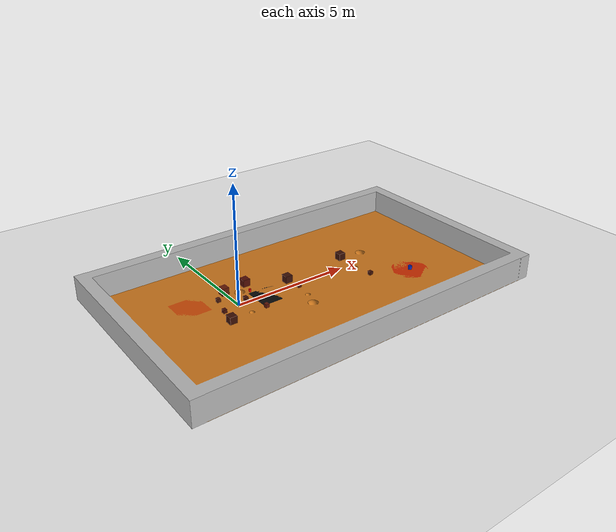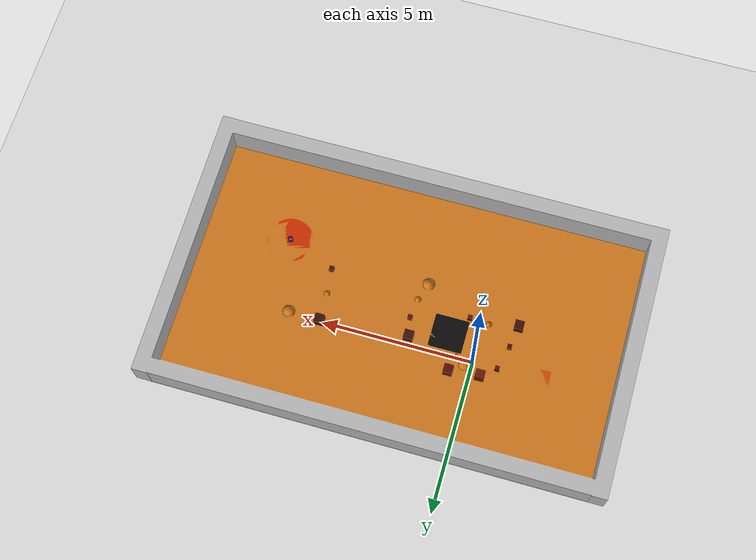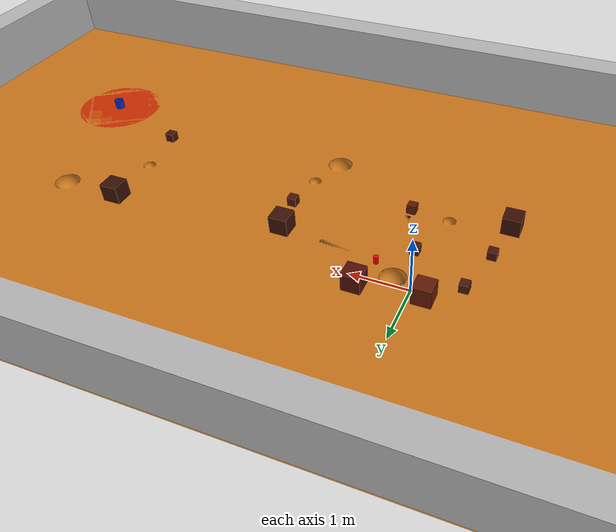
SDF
<sdf version="1.7">
 <world name="default">
  <light name="sun" type="directional">
   <pose>0 0 10 0 -0 0</pose>
   <diffuse>0.8 0.8 0.8 1</diffuse>
   <specular>0.2 0.2 0.2 1</specular>
   <attenuation>
    <range>1000</range>
    <constant>0.9</constant>
    <linear>0.01</linear>
    <quadratic>0.001</quadratic>
   </attenuation>
   <direction>-0.5 0.1 -0.9</direction>
   <spot><inner_angle>0</inner_angle><outer_angle>0</outer_angle><falloff>0</falloff></spot>
  </light>
  <model name="ground_plane">
   <static>1</static>
   <link name="link">
    <collision name="collision">
     <geometry><plane><normal>0 0 1</normal><size>100 100</size></plane></geometry>
     <surface>
      <contact><collide_bitmask>65535</collide_bitmask></contact>
      <friction><ode><mu>100</mu><mu2>50</mu2></ode></friction>
     </surface>
    </collision>
    <visual name="visual">
     <cast_shadows>0</cast_shadows>
     <geometry><plane><normal>0 0 1</normal><size>100 100</size></plane></geometry>
     <material>
      <script><uri>file://media/materials/scripts/gazebo.material</uri><name>Gazebo/Grey</name></script>
     </material>
    </visual>
   </link>
  </model>
  <gravity>0 0 -9.8</gravity>
  <magnetic_field>6e-06 2.3e-05 -4.2e-05</magnetic_field>
  <atmosphere type="adiabatic"/>
  <physics type="ode">
   <max_step_size>0.001</max_step_size>
   <real_time_factor>1</real_time_factor>
   <real_time_update_rate>1000</real_time_update_rate>
  </physics>
  <scene><ambient>0.4 0.4 0.4 1</ambient><background>0.7 0.7 0.7 1</background><shadows>1</shadows></scene>
  <audio><device>default</device></audio>
  <spherical_coordinates>
   <surface_model>EARTH_WGS84</surface_model>
   <latitude_deg>0</latitude_deg>
   <longitude_deg>0</longitude_deg>
   <elevation>0</elevation>
   <heading_deg>0</heading_deg>
  </spherical_coordinates>
  <model name="red_cylinder">
   <link name="link_0">
    <inertial>
     <mass>0.25</mass>
     <inertia>
      <ixx>0.0364583</ixx>
      <ixy>0</ixy>
      <ixz>0</ixz>
      <iyy>0.0364583</iyy>
      <iyz>0</iyz>
      <izz>0.03125</izz>
     </inertia>
    </inertial>
    <visual name="visual">
     <geometry><cylinder><radius>0.04</radius><length>0.125</length></cylinder></geometry>
     <material>
      <lighting>1</lighting>
      <script><uri>file://media/materials/scripts/gazebo.material</uri><name>Gazebo/Grey</name></script>
      <shader type="pixel"><normal_map>__default__</normal_map></shader>
      <ambient>1 0 0 1</ambient>
      <diffuse>0.7 0.7 0.7 1</diffuse>
      <specular>0.01 0.01 0.01 1</specular>
      <emissive>0 0 0 1</emissive>
     </material>
    </visual>
    <collision name="collision">
     <geometry><cylinder><radius>0.04</radius><length>0.125</length></cylinder></geometry>
     <surface>
      <friction>
       <ode><mu>1</mu><mu2>1</mu2><fdir1>0 0 0</fdir1><slip1>0</slip1><slip2>0</slip2></ode>
       <torsional>
        <coefficient>1</coefficient>
        <patch_radius>0</patch_radius>
        <surface_radius>0</surface_radius>
        <use_patch_radius>1</use_patch_radius>
        <ode><slip>0</slip></ode>
       </torsional>
      </friction>
      <bounce><restitution_coefficient>0</restitution_coefficient><threshold>1e+06</threshold></bounce>
      <contact>
       <collide_without_contact>0</collide_without_contact>
       <collide_without_contact_bitmask>1</collide_without_contact_bitmask>
       <collide_bitmask>1</collide_bitmask>
       <ode>
        <soft_cfm>0</soft_cfm>
        <soft_erp>0.2</soft_erp>
        <kp>1e+13</kp>
        <kd>1</kd>
        <max_vel>0.01</max_vel>
        <min_depth>0</min_depth>
       </ode>
       <bullet>
        <split_impulse>1</split_impulse>
        <split_impulse_penetration_threshold>-0.01</split_impulse_penetration_threshold>
        <soft_cfm>0</soft_cfm>
        <soft_erp>0.2</soft_erp>
        <kp>1e+13</kp>
        <kd>1</kd>
       </bullet>
      </contact>
     </surface>
    </collision>
   </link>
   <static>0</static>
   <pose>0.53692 0.029458 0.475342 0.001349 -0.000312 4.7e-05</pose>
  </model>
  <model name="map">
   <link name="link_0">
    <inertial>
     <mass>1</mass>
     <inertia>
      <ixx>0.166667</ixx>
      <ixy>0</ixy>
      <ixz>0</ixz>
      <iyy>0.166667</iyy>
      <iyz>0</iyz>
      <izz>0.166667</izz>
     </inertia>
    </inertial>
    <pose>0.783961 -0.763698 0 0 -0 0</pose>
    <visual name="visual">
     <geometry>
      <mesh>
       <uri>/home/zine/final_bot/isro-rover-challenge/rover/zine_rover_description/world/map.dae</uri>
       <scale>1 1 1</scale>
      </mesh>
     </geometry>
    </visual>
    <collision name="collision">
     <geometry>
      <mesh>
       <uri>/home/zine/final_bot/isro-rover-challenge/rover/zine_rover_description/world/map.dae</uri>
       <scale>1 1 1</scale>
      </mesh>
     </geometry>
     <surface>
      <friction>
       <ode><mu>1</mu><mu2>1</mu2><fdir1>0 0 0</fdir1><slip1>0</slip1><slip2>0</slip2></ode>
       <torsional>
        <coefficient>1</coefficient>
        <patch_radius>0</patch_radius>
        <surface_radius>0</surface_radius>
        <use_patch_radius>1</use_patch_radius>
        <ode><slip>0</slip></ode>
       </torsional>
      </friction>
      <bounce><restitution_coefficient>0</restitution_coefficient><threshold>1e+06</threshold></bounce>
      <contact>
       <collide_without_contact>0</collide_without_contact>
       <collide_without_contact_bitmask>1</collide_without_contact_bitmask>
       <collide_bitmask>1</collide_bitmask>
       <ode>
        <soft_cfm>0</soft_cfm>
        <soft_erp>0.2</soft_erp>
        <kp>1e+13</kp>
        <kd>1</kd>
        <max_vel>0.01</max_vel>
        <min_depth>0</min_depth>
       </ode>
       <bullet>
        <split_impulse>1</split_impulse>
        <split_impulse_penetration_threshold>-0.01</split_impulse_penetration_threshold>
        <soft_cfm>0</soft_cfm>
        <soft_erp>0.2</soft_erp>
        <kp>1e+13</kp>
        <kd>1</kd>
       </bullet>
      </contact>
     </surface>
    </collision>
   </link>
   <static>1</static>
   <pose>-3.27795 1.69714 0.412795 0 -0 0</pose>
  </model>
 </world>
</sdf>
